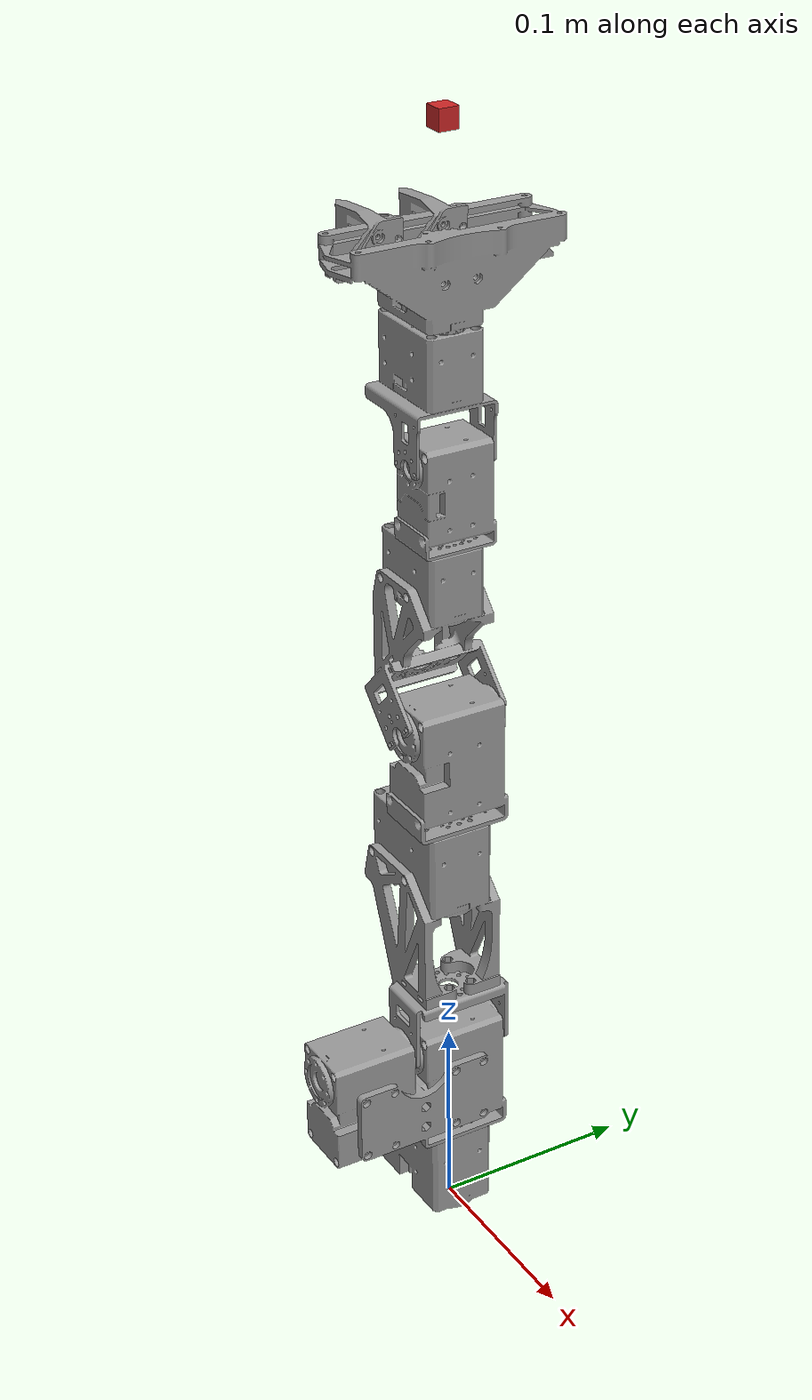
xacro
<?xml version="1.0"?>
<!-- Manipulator Chain -->
<robot xmlns:xacro="http://ros.org/wiki/xacro">

  <!-- Link 1 -->
  <link name="link1">
    <visual>
      <origin xyz="0 0 0.044" rpy="0 0 0"/>
      <geometry>
        <mesh filename="package://dynamixel_7dof_arm_description/meshes/link1_visual.stl" scale="0.001 0.001 0.001"/>
      </geometry>
      <material name="grey"/>
    </visual>

    <collision>
      <origin xyz="0 0 0.044" rpy="0 0 0"/>
      <geometry>
        <mesh filename="package://dynamixel_7dof_arm_description/meshes/link1_collision.stl" scale="0.001 0.001 0.001"/>
      </geometry>
    </collision>

    <inertial>
      <origin xyz="0 0 0.044" />
      <mass value="1.65e-01" />
      <inertia ixx="9.7675421e-05" ixy="1.5076192e-06" ixz="-7.0306018e-05"
               iyy="1.9686152e-04" iyz="1.4556164e-06"
               izz="1.2605450e-04" />
    </inertial>
  </link>

  <!-- Joint 1 -->
  <joint name="joint1" type="revolute">
    <parent link="link1"/>
    <child link="link2"/>
    <origin xyz="0.0 0.0 0.098" rpy="${-pi*0.5} 0 0"/>
    <axis xyz="0 0 1"/>
    <limit velocity="${pi}" effort="1" lower="${-pi*0.9}" upper="${pi*0.9}" />
  </joint>

  <!--  Link 2 -->
  <link name="link2">
    <visual>
      <origin xyz="0 0 0" rpy="0 0 0"/>
      <geometry>
        <mesh filename="package://dynamixel_7dof_arm_description/meshes/link2_visual.stl" scale="0.001 0.001 0.001"/>
      </geometry>
      <material name="grey"/>
    </visual>

    <collision>
      <origin xyz="0 0 0" rpy="0 0 0"/>
      <geometry>
        <mesh filename="package://dynamixel_7dof_arm_description/meshes/link2_collision.stl" scale="0.001 0.001 0.001"/>
      </geometry>
    </collision>

    <inertial>
      <origin xyz="0 0 0" />
      <mass value="3.65360184e-01" />
      <inertia ixx="7.23925638e-04" ixy="-2.9538917e-06" ixz="4.0975813308e-06"
               iyy="4.921326352e-04" iyz="1.767767725e-04"
               izz="3.02730708e-04" />
    </inertial>
  </link>

  <!--  Joint 2 -->
  <joint name="joint2" type="revolute">
    <parent link="link2"/>
    <child link="link3"/>
    <origin xyz="0 -0.126 0" rpy="${pi*0.5} 0 0"/>
    <axis xyz="0 0 1"/>
    <limit velocity="${pi}" effort="1" lower="${-pi*0.25}" upper="${pi*0.5}" />
  </joint>

  <!--  Link 3 -->
  <link name="link3">
    <visual>
      <origin xyz="0 0 0" rpy="0 0 0"/>
      <geometry>
        <mesh filename="package://dynamixel_7dof_arm_description/meshes/link3_visual.stl" scale="0.001 0.001 0.001"/>
      </geometry>
      <material name="grey"/>
    </visual>

    <collision>
      <origin xyz="0 0 0" rpy="0 0 0"/>
      <geometry>
        <mesh filename="package://dynamixel_7dof_arm_description/meshes/link3_collision.stl" scale="0.001 0.001 0.001"/>
      </geometry>
    </collision>

    <inertial>
      <origin xyz="0 0 0" />
      <mass value="2.12396196e-01" />
      <inertia ixx="4.36697977e-04" ixy="1.5076192e-06" ixz="-8.98306422e-05"
               iyy="5.31846236e-04" iyz="1.4556164e-06"
               izz="1.5563934e-04" />
    </inertial>
  </link>

  <!--  Joint 3 -->
  <joint name="joint3" type="revolute">
    <parent link="link3"/>
    <child link="link4"/>
    <origin xyz="0 0 0.054" rpy="${-pi*0.5} 0 0"/>
    <axis xyz="0 1 0"/>
    <limit velocity="4.8" effort="1" lower="${-pi*0.3}" upper="${pi*0.44}" />
  </joint>

  <!--  Link 4 -->
  <link name="link4">
    <visual>
      <origin xyz="0 0 0" rpy="0 0 0"/>
      <geometry>
        <mesh filename="package://dynamixel_7dof_arm_description/meshes/link4_visual.stl" scale="0.001 0.001 0.001"/>
      </geometry>
      <material name="grey"/>
    </visual>

    <collision>
      <origin xyz="0 0 0" rpy="0 0 0"/>
      <geometry>
        <mesh filename="package://dynamixel_7dof_arm_description/meshes/link4_collision.stl" scale="0.001 0.001 0.001"/>
      </geometry>
    </collision>

    <inertial>
      <origin xyz="0 0 0" />
      <mass value="1.76006714e-01" />
      <inertia ixx="1.69380031e-04" ixy="-1.5076192e-06" ixz="-9.8692692e-09"
               iyy="4.53380742e-05" iyz="-1.8439349e-06"
               izz="1.52969543e-04" />
    </inertial>
  </link>

  <!--  Joint 4 -->
  <joint name="joint4" type="revolute">
    <parent link="link4"/>
    <child link="link5"/>
    <origin xyz="0 -0.092 0" rpy="${pi*0.5} 0 0"/>
    <axis xyz="0 1 0"/>
    <limit velocity="4.8" effort="1" lower="${-pi*0.57}" upper="${pi*0.65}" />
  </joint>

  <!--  Link 5 -->
  <link name="link5">
    <visual>
      <origin xyz="0 0 0" rpy="0 0 0"/>
      <geometry>
        <mesh filename="package://dynamixel_7dof_arm_description/meshes/link5_visual.stl" scale="0.001 0.001 0.001"/>
      </geometry>
      <material name="grey"/>
    </visual>

    <collision>
      <origin xyz="0 0 0" rpy="0 0 0"/>
      <geometry>
        <mesh filename="package://dynamixel_7dof_arm_description/meshes/link5_collision.stl" scale="0.001 0.001 0.001"/>
      </geometry>
    </collision>

    <inertial>
      <origin xyz="0 0 0" />
      <mass value="1.140236536e-01" />
      <inertia ixx="1.73149898e-04" ixy="6.4100516e-07" ixz="-5.44674084e-05"
               iyy="2.05741025e-04" iyz="5.6194478e-07"
               izz="6.4729774e-05" />
    </inertial>
  </link>

  <!--  Joint 5 -->
  <joint name="joint5" type="revolute">
    <parent link="link5"/>
    <child link="link6"/>
    <origin xyz="0 0 0.0425" rpy="${-pi*0.5} 0 0"/>
    <axis xyz="0 1 0"/>
    <limit velocity="4.8" effort="1" lower="${-pi*0.57}" upper="${pi*0.65}" />
  </joint>

  <!--  Link 6 -->
  <link name="link6">
    <visual>
      <origin xyz="0 0 0" rpy="0 0 0"/>
      <geometry>
        <mesh filename="package://dynamixel_7dof_arm_description/meshes/link6_visual.stl" scale="0.001 0.001 0.001"/>
      </geometry>
      <material name="grey"/>
    </visual>

    <collision>
      <origin xyz="0 0 0" rpy="0 0 0"/>
      <geometry>
        <mesh filename="package://dynamixel_7dof_arm_description/meshes/link6_collision.stl" scale="0.001 0.001 0.001"/>
      </geometry>
    </collision>

    <inertial>
      <origin xyz="0 0 0" />
      <mass value="8.76309701e-02" />
      <inertia ixx="5.25353043e-05" ixy="-6.4100516e-07" ixz="-5.5567317e-09"
               iyy="1.49092849e-05" iyz="-1.0653297e-06"
               izz="4.86901315e-05" />
    </inertial>
  </link>

  <!--  Joint 6 -->
  <joint name="joint6" type="revolute">
    <parent link="link6"/>
    <child link="link7"/>
    <origin xyz="0 -0.062 0" rpy="${pi*0.5} 0 0"/>
    <axis xyz="0 1 0"/>
    <limit velocity="4.8" effort="1" lower="${-pi*0.57}" upper="${pi*0.65}" />
  </joint>

  <!--  Link 7 -->
  <link name="link7">
    <visual>
      <origin xyz="0 0 0" rpy="0 0 0"/>
      <geometry>
        <mesh filename="package://dynamixel_7dof_arm_description/meshes/link7_visual.stl" scale="0.001 0.001 0.001"/>
      </geometry>
      <material name="grey"/>
    </visual>

    <collision>
      <origin xyz="0 0 0" rpy="0 0 0"/>
      <geometry>
        <mesh filename="package://dynamixel_7dof_arm_description/meshes/link7_collision.stl" scale="0.001 0.001 0.001"/>
      </geometry>
    </collision>

    <inertial>
      <origin xyz="0 0 0" />
      <mass value="9.3693466e-02" />
      <inertia ixx="5.2902474e-05" ixy="6.40951087082e-07" ixz="-2.4025384e-05"
               iyy="8.2881293e-05" iyz="5.6194478e-07"
               izz="4.61038615e-05" />
    </inertial>
  </link>

  <!--  Joint 7 -->
  <joint name="joint7" type="revolute">
    <parent link="link7"/>
    <child link="gripper"/>
    <origin xyz="0 0 0.036" rpy="${-pi*0.5} 0 0"/>
    <axis xyz="0 1 0"/>
    <limit velocity="4.8" effort="1" lower="${-pi*0.57}" upper="${pi*0.65}" />
  </joint>

  <!--  Gripper -->
  <link name="gripper">
    <visual>
      <origin xyz="0 0 0" rpy="0 0 0"/>
      <geometry>
        <mesh filename="package://dynamixel_7dof_arm_description/meshes/gripper_visual.stl" scale="0.001 0.001 0.001"/>
      </geometry>
      <material name="grey"/>
    </visual>

    <collision>
      <origin xyz="0 0 0" rpy="0 0 0"/>
      <geometry>
        <mesh filename="package://dynamixel_7dof_arm_description/meshes/gripper_collision.stl" scale="0.001 0.001 0.001"/>
      </geometry>
    </collision>

    <inertial>
      <origin xyz="0 0 0" />
      <mass value="1.175366352e-01" />
      <inertia ixx="6.087557e-05" ixy="-5.0302e-08" ixz="-2.027965366431884e-05"
               iyy="9.5134911e-05" iyz="5.61960245365e-07"
               izz="4.986382864e-05" />
    </inertial>
  </link>

  <!--  Gripper joint 1 -->
  <joint name="gripper_joint1" type="prismatic">
    <parent link="gripper"/>
    <child link="finger_left"/>
    <origin xyz="0 0 0.016" rpy="${pi} ${pi} 0"/>
    <axis xyz="0 0 -1"/>
    <limit velocity="4.8" effort="1" lower="-0.016" upper="0.016" />
  </joint>

  <!-- Left finger link -->
  <link name="finger_left">
    <visual>
      <origin xyz="0 0 0" rpy="0 0 0"/>
      <geometry>
        <mesh filename="package://dynamixel_7dof_arm_description/meshes/finger_visual.stl" scale="0.001 0.001 0.001"/>
      </geometry>
      <material name="grey"/>
    </visual>

    <collision>
      <origin xyz="0 0 0" rpy="0 0 0"/>
      <geometry>
        <mesh filename="package://dynamixel_7dof_arm_description/meshes/finger_collision.stl" scale="0.001 0.001 0.001"/>
      </geometry>
    </collision>

    <inertial>
      <origin xyz="0 0 0" />
      <mass value="1.5157383e-02" />
      <inertia ixx="2.1703323e-06" ixy="4.7785008e-08" ixz="1.9357889e-06"
               iyy="1.4304498e-05" iyz="1.8450264e-07"
               izz="1.3405196e-05" />
    </inertial>
  </link>

  <!--  Gripper joint 2 -->
  <joint name="gripper_joint2" type="prismatic">
    <parent link="gripper"/>
    <child link="finger_right"/>
    <origin xyz="0 0 -0.016" rpy="0 0 ${pi}"/>
    <axis xyz="0 0 1"/>
    <limit velocity="4.8" effort="1" lower="-0.016" upper="0.016" />
    <mimic joint="gripper" multiplier="1"/>
  </joint>

  <!-- Right finger link -->
  <link name="finger_right">
    <visual>
      <origin xyz="0 0 0" rpy="0 0 0"/>
      <geometry>
        <mesh filename="package://dynamixel_7dof_arm_description/meshes/finger_visual.stl" scale="0.001 0.001 0.001"/>
      </geometry>
      <material name="grey"/>
    </visual>

    <collision>
      <origin xyz="0 0 0" rpy="0 0 0"/>
      <geometry>
        <mesh filename="package://dynamixel_7dof_arm_description/meshes/finger_collision.stl" scale="0.001 0.001 0.001"/>
      </geometry>
    </collision>

    <inertial>
      <origin xyz="0 0 0" />
      <mass value="1.5157383e-02" />
      <inertia ixx="2.1703323e-06" ixy="4.7785008e-08" ixz="1.9357889e-06"
               iyy="1.4304498e-05" iyz="1.8450264e-07"
               izz="1.3405196e-05" />
    </inertial>
  </link>

  <!-- end effector joint -->
  <joint name="end_effector_joint" type="fixed">
    <origin xyz="0 -0.0565 0" rpy="${pi/2} 0 0"/>
    <parent link="gripper"/>
    <child link="end_effector_link"/>
  </joint>

  <!-- end effector link -->
  <link name="end_effector_link">
    <visual>
      <origin xyz="0 0 0" rpy="0 0 0"/>
      <geometry>
        <box size="0.01 0.01 0.01" />
      </geometry>
      <material name="red"/>
     </visual>

    <inertial>
      <origin xyz="0 0 0" />
      <mass value="1.0e-03" />
      <inertia ixx="1.0e-03" ixy="0.0" ixz="0.0"
               iyy="1.0e-03" iyz="0.0"
               izz="1.0e-03" />
    </inertial>
  </link>

  <!-- Realsense Camera Joint Position -->
  <joint name="camera_joint" type="fixed">
    <axis xyz="0 1 0" />
    <origin xyz="0.070 0.032 0.052" rpy="0 0 0"/>
    <parent link="link5"/>
    <child link="camera_link"/>
  </joint>

  <link name="camera_link"/>

</robot>
